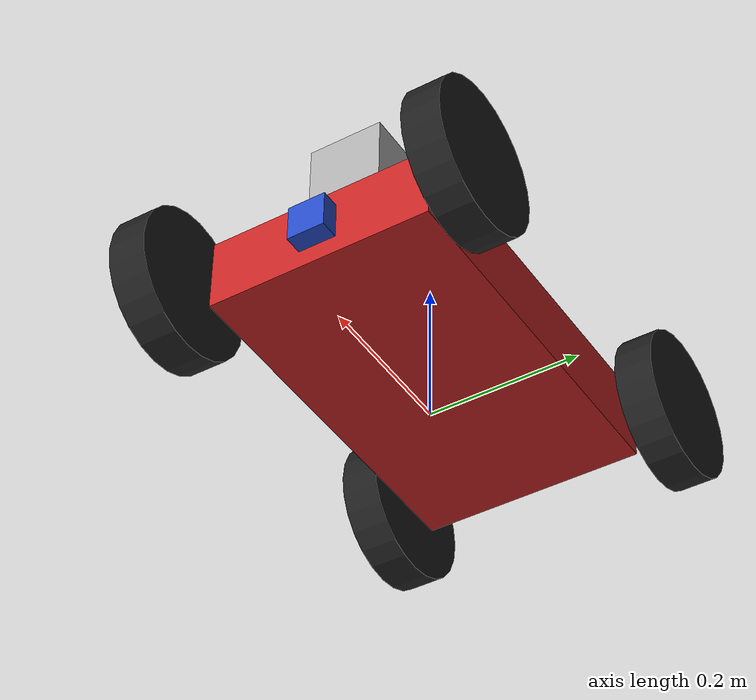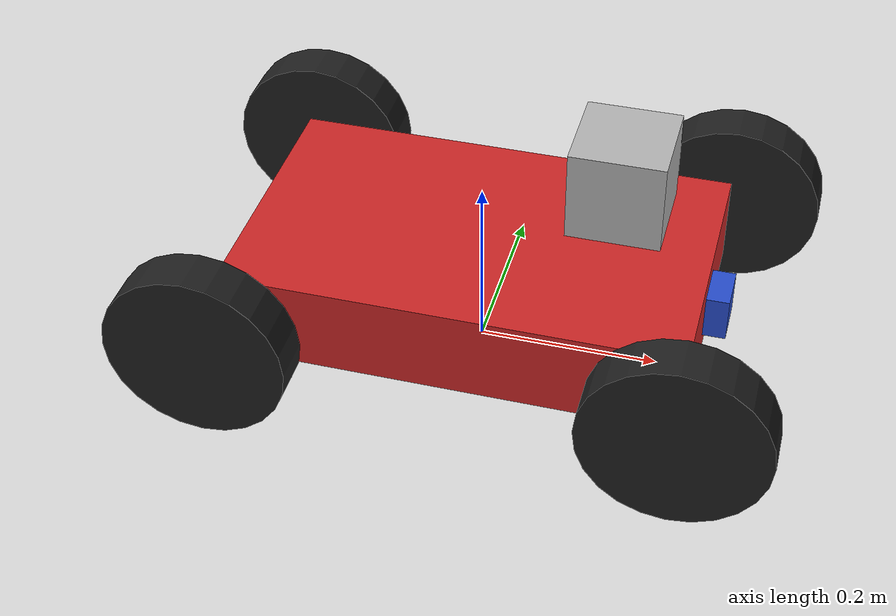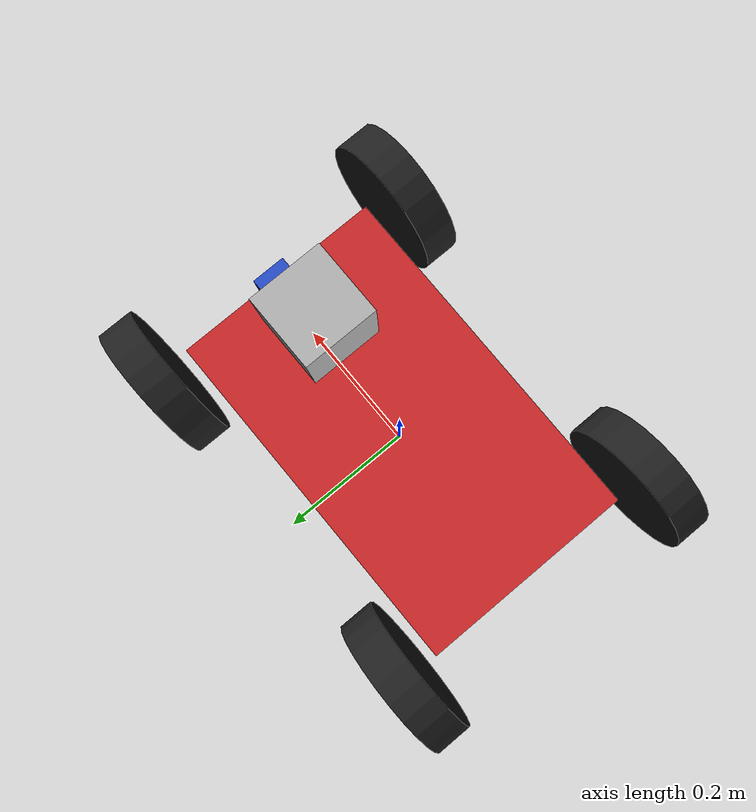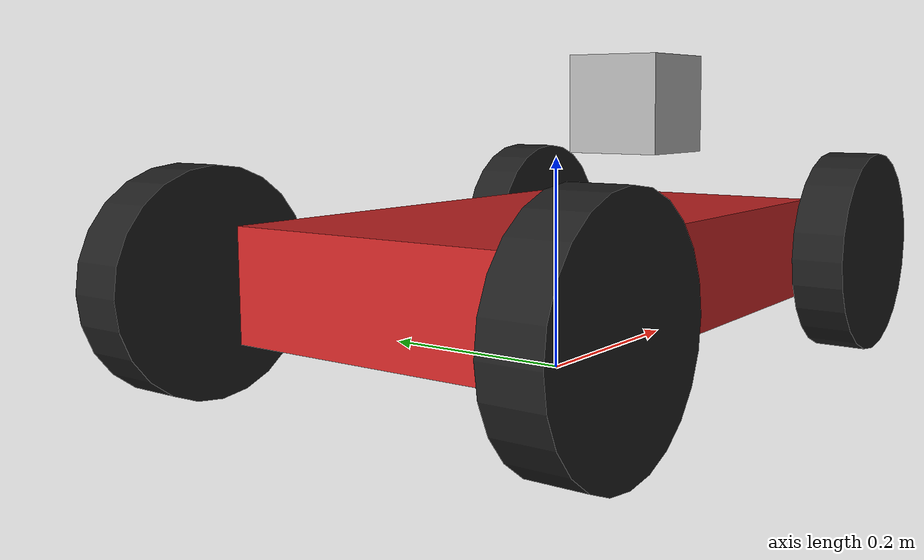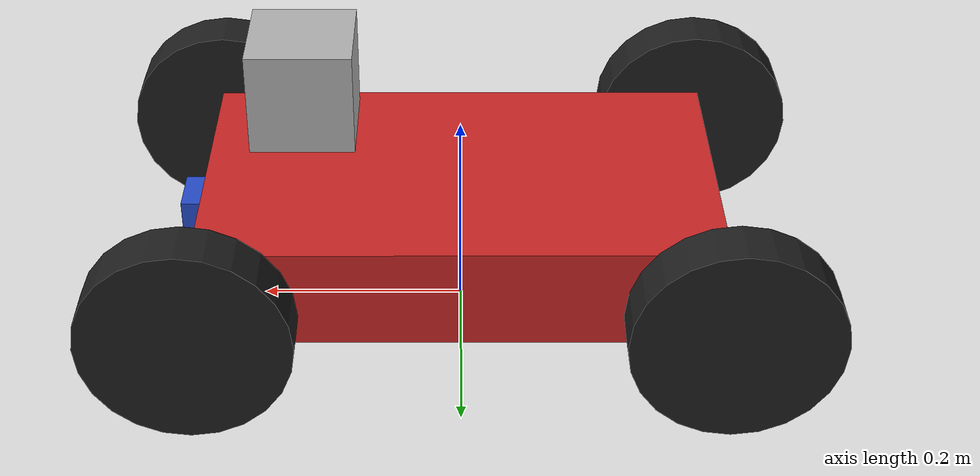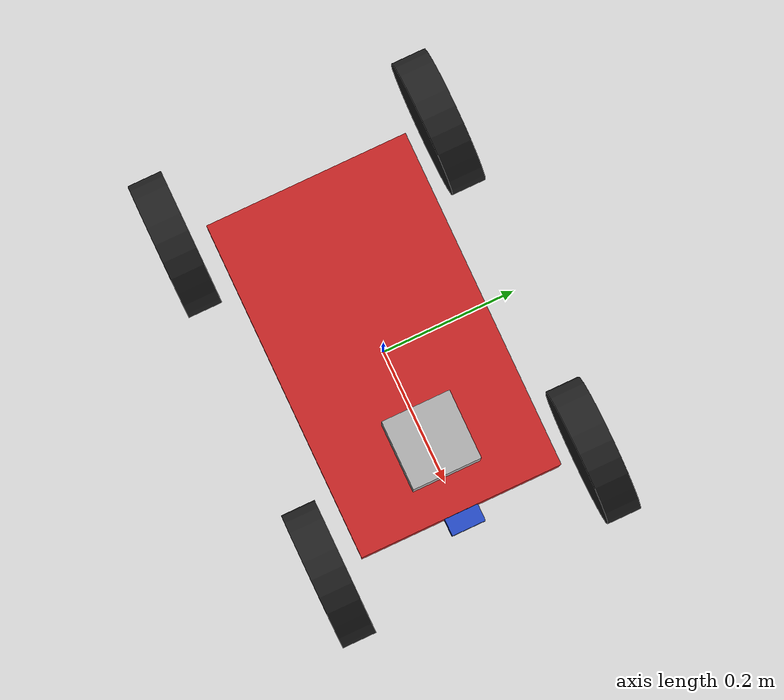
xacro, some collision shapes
<?xml version='1.0'?>

<robot name="my_robot" xmlns:xacro="http://www.ros.org/wiki/xacro">

  <!--Import gazebo elements-->
  <xacro:include filename="$(find my_robot_3)/urdf/my_robot_2.gazebo" />

  <link name="robot_footprint"></link>

  <joint name="robot_footprint_joint" type="fixed">
    <origin xyz="0 0 0.1" rpy="0 0 0" />
    <parent link="robot_footprint"/>
    <child link="chassis" />
  </joint>

  <link name='chassis'>
    <pose>0 0 0.1 0 0 0</pose>

    <inertial>
      <mass value="15.0"/>
      <origin xyz="0.0 0 0" rpy=" 0 0 0"/>
      <inertia
          ixx="0.1" ixy="0" ixz="0"
          iyy="0.1" iyz="0"
          izz="0.1"
      />
    </inertial>

    <collision name='collision'>
      <origin xyz="0 0 0" rpy=" 0 0 0"/>
      <geometry>
        <box size=".5 .3 .1"/>
      </geometry>
    </collision>

    <visual name='chassis_visual'>
      <origin xyz="0 0 0" rpy=" 0 0 0"/>
      <geometry>
        <box size=".5 .3 .1"/>
      </geometry>
    </visual>

  </link>

  <link name='front_left_wheel'>
    <pose>0 0 0.0 0 0 0</pose>

    <inertial>
      <mass value="5.0"/>
      <origin xyz="0.0 0 0" rpy=" 0 1.5707 1.5707"/>
      <inertia
          ixx="0.1" ixy="0" ixz="0"
          iyy="0.1" iyz="0"
          izz="0.1"
      />
    </inertial>

    <collision name='collision'>
      <origin xyz="0.0 0 0" rpy=" 0 1.5707 1.5707"/>
      <geometry>
        <cylinder radius="0.1" length ="0.05"/>
      </geometry>
    </collision>

    <visual name='front_left_wheel_visual'>
      <origin xyz="0.0 0 0" rpy=" 0 1.5707 1.5707"/>
      <geometry>
        <cylinder radius="0.1" length ="0.05"/>
      </geometry>
    </visual>

  </link>

  <joint type="continuous" name="front_left_wheel_hinge">
    <origin xyz="0.25 0.2 0" rpy="0 0 0"/>
    <child link="front_left_wheel"/>
    <parent link="chassis"/>
    <axis xyz="0 1 0" rpy="0 0 0"/>
    <limit effort="10000" velocity="1000"/>
    <dynamics damping="1.0" friction="1.0"/>
  </joint>

  <link name='front_right_wheel'>
    <pose>0 0 0.0 0 0 0</pose>

    <inertial>
      <mass value="5.0"/>
      <origin xyz="0.0 0 0" rpy=" 0 1.5707 1.5707"/>
      <inertia
          ixx="0.1" ixy="0" ixz="0"
          iyy="0.1" iyz="0"
          izz="0.1"
      />
    </inertial>

    <collision name='collision'>
      <origin xyz="0.0 0 0" rpy=" 0 1.5707 1.5707"/>
      <geometry>
        <cylinder radius="0.1" length ="0.05"/>
      </geometry>
    </collision>

    <visual name='front_right_wheel_visual'>
      <origin xyz="0.0 0 0" rpy=" 0 1.5707 1.5707"/>
      <geometry>
        <cylinder radius="0.1" length ="0.05"/>
      </geometry>
    </visual>

  </link>

  <joint type="continuous" name="front_right_wheel_hinge">
    <origin xyz="0.25 -0.2 0" rpy="0 0 0"/>
    <child link="front_right_wheel"/>
    <parent link="chassis"/>
    <axis xyz="0 1 0" rpy="0 0 0"/>
    <limit effort="10000" velocity="1000"/>
    <dynamics damping="1.0" friction="1.0"/>
  </joint>

  <link name='back_left_wheel'>
    <pose>0 0 0.0 0 0 0</pose>

    <inertial>
      <mass value="5.0"/>
      <origin xyz="0.0 0 0" rpy=" 0 1.5707 1.5707"/>
      <inertia
          ixx="0.1" ixy="0" ixz="0"
          iyy="0.1" iyz="0"
          izz="0.1"
      />
    </inertial>

    <collision name='collision'>
      <origin xyz="0.0 0 0" rpy=" 0 1.5707 1.5707"/>
      <geometry>
        <cylinder radius="0.1" length ="0.05"/>
      </geometry>
    </collision>

    <visual name='back_left_wheel_visual'>
      <origin xyz="0.0 0 0" rpy=" 0 1.5707 1.5707"/>
      <geometry>
        <cylinder radius="0.1" length ="0.05"/>
      </geometry>
    </visual>

  </link>

  <joint type="continuous" name="back_left_wheel_hinge">
    <origin xyz="-0.25 0.2 0" rpy="0 0 0"/>
    <child link="back_left_wheel"/>
    <parent link="chassis"/>
    <axis xyz="0 1 0" rpy="0 0 0"/>
    <limit effort="10000" velocity="1000"/>
    <dynamics damping="1.0" friction="1.0"/>
  </joint>

  <link name='back_right_wheel'>
    <pose>0 0 0.0 0 0 0</pose>

    <inertial>
      <mass value="5.0"/>
      <origin xyz="0.0 0 0" rpy=" 0 1.5707 1.5707"/>
      <inertia
          ixx="0.1" ixy="0" ixz="0"
          iyy="0.1" iyz="0"
          izz="0.1"
      />
    </inertial>

    <collision name='collision'>
      <origin xyz="0.0 0 0" rpy=" 0 1.5707 1.5707"/>
      <geometry>
        <cylinder radius="0.1" length ="0.05"/>
      </geometry>
    </collision>

    <visual name='back_right_wheel_visual'>
      <origin xyz="0.0 0 0" rpy=" 0 1.5707 1.5707"/>
      <geometry>
        <cylinder radius="0.1" length ="0.05"/>
      </geometry>
    </visual>

  </link>

  <joint type="continuous" name="back_right_wheel_hinge">
    <origin xyz="-0.25 -0.2 0" rpy="0 0 0"/>
    <child link="back_right_wheel"/>
    <parent link="chassis"/>
    <axis xyz="0 1 0" rpy="0 0 0"/>
    <limit effort="10000" velocity="1000"/>
    <dynamics damping="1.0" friction="1.0"/>
  </joint>

  <link name='camera'>
    <pose>0 0 0.0 0 0 0</pose>

    <inertial>
      <mass value="0.1"/>
      <origin xyz="0.0 0 0" rpy=" 0 0 0"/>
      <inertia
          ixx="1e-6" ixy="0" ixz="0"
          iyy="1e-6" iyz="0"
          izz="1e-6"
      />
    </inertial>

    <collision name='collision'>
      <origin xyz="0.0 0 0" rpy=" 0 0 0"/>
      <geometry>
        <box size=".05 .05 .05"/>
      </geometry>
    </collision>

    <visual name='camera_visual'>
      <origin xyz="0.0 0 0" rpy=" 0 0 0"/>
      <geometry>
        <box size=".05 .05 .05"/>
      </geometry>
    </visual>

  </link>

  <joint name="camera_joint" type="fixed">
    <axis xyz="0 1 0"/>
    <origin xyz="0.25 0 0" rpy="0 0 0" />
    <parent link="chassis"/>
    <child link="camera"/>
  </joint>

  <link name='hokuyo'>
    <pose>0 0 0.0 0 0 0</pose>

    <inertial>
      <mass value="1e-5"/>
      <origin xyz="0.0 0 0" rpy=" 0 0 0"/>
      <inertia
          ixx="1e-6" ixy="0" ixz="0"
          iyy="1e-6" iyz="0"
          izz="1e-6"
      />
    </inertial>

    <collision name='collision'>
      <origin xyz="0.0 0 0" rpy=" 0 0 0"/>
      <geometry>
        <box size=".1 .1 .1"/>
      </geometry>
    </collision>

    <visual name='hokuyo_visual'>
      <origin xyz="0.0 0 0" rpy=" 0 0 0"/>
      <geometry>
        <mesh filename="package://my_robot_3/meshes/hokuyo.dae"/>
      </geometry>
    </visual>

  </link>

  <joint name="hokuyo_joint" type="fixed">
    <axis xyz="0 1 0"/>
    <origin xyz="0.15 0 0.15" rpy="0 0 0" />
    <parent link="chassis"/>
    <child link="hokuyo"/>
  </joint>

  <gazebo reference="front_left_wheel">
    <material>Gazebo/Black</material>
  </gazebo>

  <gazebo reference="front_right_wheel">
    <material>Gazebo/Black</material>
  </gazebo>

  <gazebo reference="back_left_wheel">
    <material>Gazebo/Black</material>
  </gazebo>

  <gazebo reference="back_right_wheel">
    <material>Gazebo/Black</material>
  </gazebo>

  <gazebo reference="chassis">
    <material>Gazebo/Red</material>
  </gazebo>

  <gazebo reference="camera">
    <material>Gazebo/Blue</material>
  </gazebo>

  <gazebo reference="front_left_wheel">
    <mu1>1.0</mu1>
    <mu2>1.0</mu2>
    <fdir1>1 1 0</fdir1>
    <slip1>0.5</slip1>
    <slip2>0.0</slip2>
  </gazebo>

  <gazebo reference="front_right_wheel">
    <mu1>1.0</mu1>
    <mu2>1.0</mu2>
    <fdir1>1 1 0</fdir1>
    <slip1>0.5</slip1>
    <slip2>0.0</slip2>
  </gazebo>

  <gazebo reference="rear_left_wheel">
    <mu1>1.0</mu1>
    <mu2>1.0</mu2>
    <fdir1>1 1 0</fdir1>
    <slip1>0.5</slip1>
    <slip2>0.0</slip2>
  </gazebo>

  <gazebo reference="rear_right_wheel">
    <mu1>1.0</mu1>
    <mu2>1.0</mu2>
    <fdir1>1 1 0</fdir1>
    <slip1>0.5</slip1>
    <slip2>0.0</slip2>
  </gazebo>

  <joint name="camera_optical_joint" type="fixed">
    <origin xyz="0 0 0" rpy="-1.5707 0 -1.5707"/>
    <parent link="camera"/>
    <child link="camera_link_optical"/>
  </joint>

  <link name="camera_link_optical">
  </link>

</robot>
